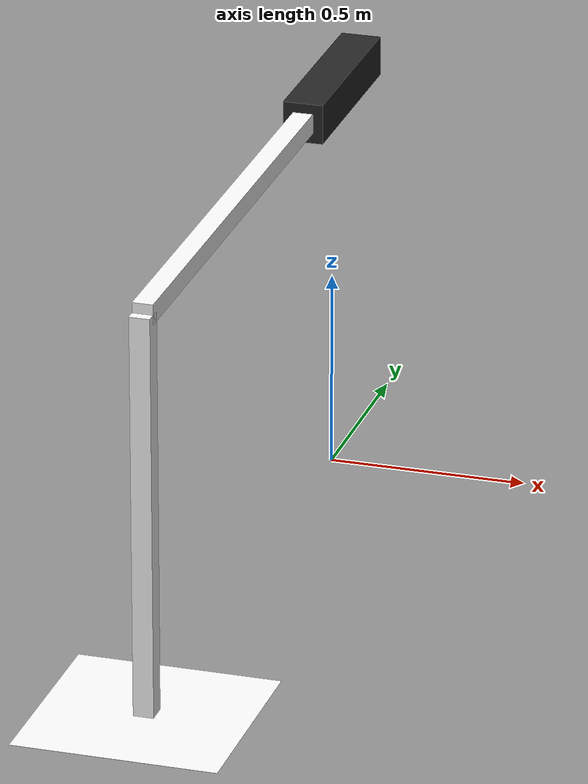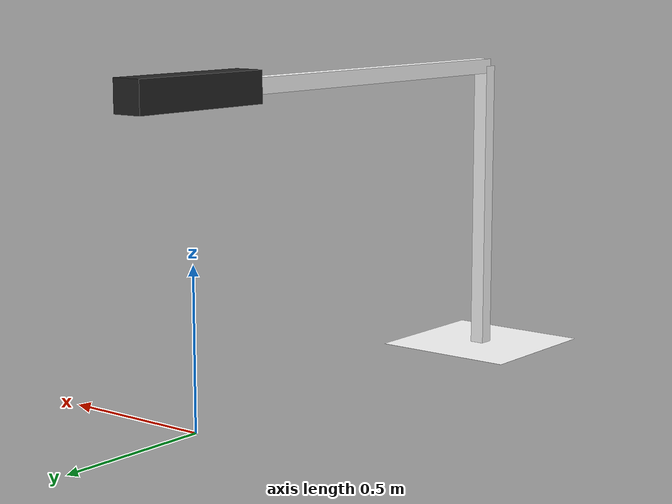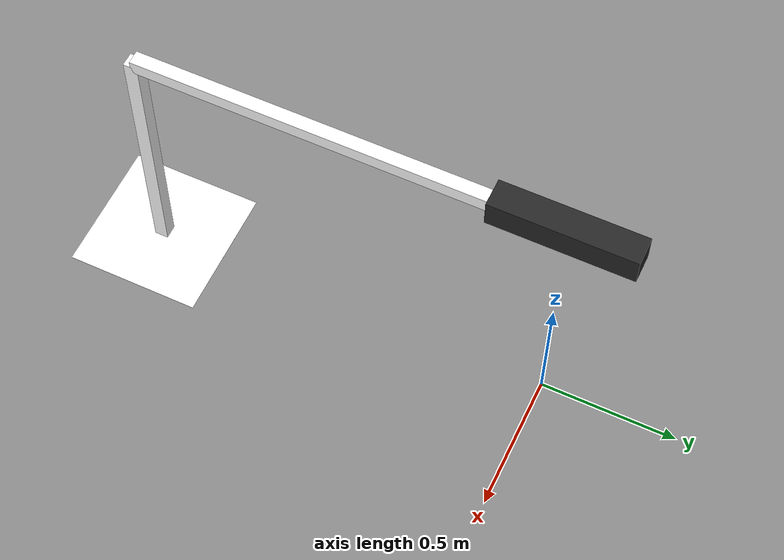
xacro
<?xml version="1.0"?>
<robot name="overhead_camera" xmlns:xacro="http://www.ros.org/wiki/xacro">

  <material name="black"><color rgba="0.15 0.15 0.15 1.0" /></material>
  <material name="white"><color rgba="1.0 1.0 1.0 1.0" /></material>

  <!-- Camera plugin -->
  <xacro:include filename="$(find gopigo_description)/urdf/include/camera.gazebo.xacro" />

  <xacro:property name="pole_thickness"         value= "0.05"/>
  <xacro:property name="pole_height"         value= "1.0"/>
  <xacro:property name="vpole_height"         value= "1.5"/>
  <xacro:property name="camera_w"         value= "0.1"/>
  <xacro:property name="camera_l"         value= "0.1"/>
  <xacro:property name="camera_h"         value= "0.5"/>
  <xacro:property name="lens_x"     value= "0.0"/>
  <xacro:property name="lens_y"     value= "0.0"/>
  <xacro:property name="lens_z"     value= "0.0"/>

  <link name="camera_base"></link>
  <!-- Camera link -->
  <joint name="base_link_joint" type="fixed">
    <origin xyz="0 ${-vpole_height} 0" rpy="0 0 0" />
    <parent link="camera_base"/>
    <child link="camera_base_link" />
  </joint>

  <link name="camera_base_link">
    <visual>
      <origin xyz="0 0 0" rpy="0 0 0" />
      <geometry>
        <box size="0.5 0.5 0.0001"/>
      </geometry>
      <material name="white" />
    </visual>
    <collision>
      <origin xyz="0 0 0"/>
      <geometry>
        <box size="0.5 0.5 0.0001"/>
      </geometry>
    </collision>
    <inertial>
      <origin xyz="0 0 0" rpy="0 0 0"/>
      <mass value="100000"/>
      <inertia ixx="100000"  ixy="0"  ixz="0" iyy="100000" iyz="0" izz="100000" />
    </inertial>
  </link>
  <joint name="base_pole_joint" type="fixed">
    <origin xyz="0 0 ${pole_height/2}" rpy="0 0 0" />
    <parent link="camera_base_link"/>
    <child link="pole" />
  </joint>

  <link name="pole">
    <visual>
      <origin xyz="0 0 0" rpy="0 0 0" />
      <geometry>
        <box size="${pole_thickness} ${pole_thickness} ${pole_height}"/>
      </geometry>
      <material name="white" />
    </visual>
    <collision>
      <origin xyz="0 0 0"/>
      <geometry>
        <box size="0.1 0.1 ${pole_height}"/>
      </geometry>
    </collision>
    <inertial>
      <origin xyz="0 0 0" rpy="0 0 0"/>
      <mass value="1000"/>
      <inertia ixx="1000"  ixy="0"  ixz="0" iyy="1000" iyz="0" izz="1000" />
    </inertial>
  </link>

  <joint name="base_vpole_joint" type="fixed">
    <origin xyz="0 ${vpole_height/2} ${pole_height/2}" rpy="1.57 0 0" />
    <parent link="pole"/>
    <child link="v_pole" />
  </joint>

  <link name="v_pole">
    <visual>
      <origin xyz="0 0 0" rpy="0 0 0" />
      <geometry>
        <box size="${pole_thickness} ${pole_thickness} ${vpole_height}"/>
      </geometry>
      <material name="white" />
    </visual>
    <collision>
      <origin xyz="0 0 0"/>
      <geometry>
        <box size="0.1 0.1 ${vpole_height}"/>
      </geometry>
    </collision>
    <inertial>
      <origin xyz="0 0 0" rpy="0 0 0"/>
      <mass value="0.00001"/>
      <inertia ixx="0.00001"  ixy="0"  ixz="0" iyy="0.00001" iyz="0" izz="0.00001" />
    </inertial>
  </link>

  <!-- Camera link -->
  <joint name="camera_top_joint" type="fixed">
    <origin xyz="0 0 ${-vpole_height/2}" rpy="0 0 -1.57" />
    <parent link="v_pole"/>
    <child link="camera_link" />
    <limit upper="0.1" lower="-0.1" velocity="0.1" effort="1"/>
    <axis xyz="0 0 1" />
  </joint>

  <link name="camera_link">
    <visual>
      <origin xyz="0 0 0" rpy="0 0 0" />
      <geometry>
        <box size="${camera_w} ${camera_l} ${camera_h}"/>
      </geometry>
      <material name="black" />
    </visual>
    <collision>
      <origin xyz="0 0 0"/>
      <geometry>
        <box size="${camera_w} ${camera_l} ${camera_h}"/>
      </geometry>
    </collision>
    <inertial>
      <origin xyz="0 0 0" rpy="0 0 0"/>
      <mass value="0.001"/>
      <inertia ixx="0.001"  ixy="0"  ixz="0" iyy="0.001" iyz="0" izz="0.001" />
    </inertial>
  </link>

  <joint name="camera_optical_joint" type="fixed">
    <!-- these values have to be these values otherwise the gazebo camera
        image won't be aligned properly with the frame it is supposedly
        originating from -->
    <origin xyz="${lens_x} ${lens_y} ${lens_z}" rpy="${-pi/2} 0 ${-pi/2}"/>
    <parent link="camera_link"/>
    <child link="camera_link_optical"/>
  </joint>

  <link name="camera_link_optical">
  </link>

  <gazebo reference="camera_link" >
      <material>Gazebo/Black</material>
  </gazebo>
</robot>
